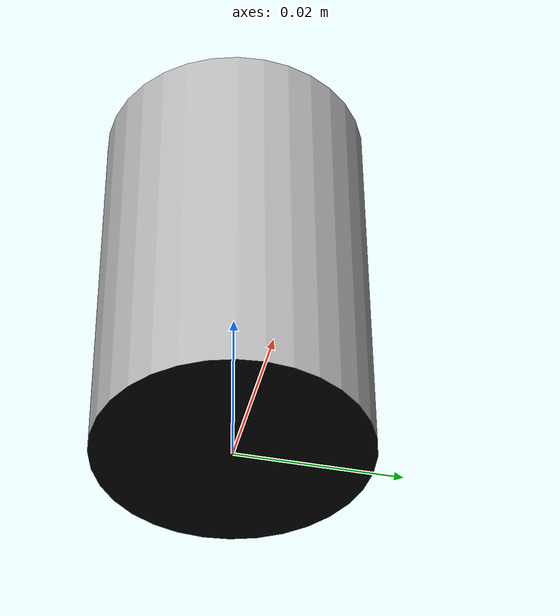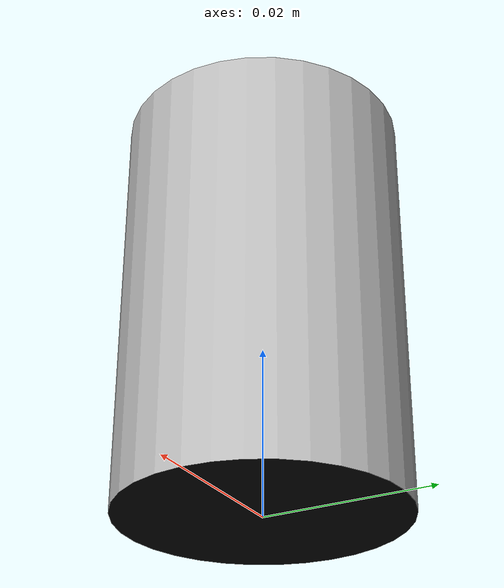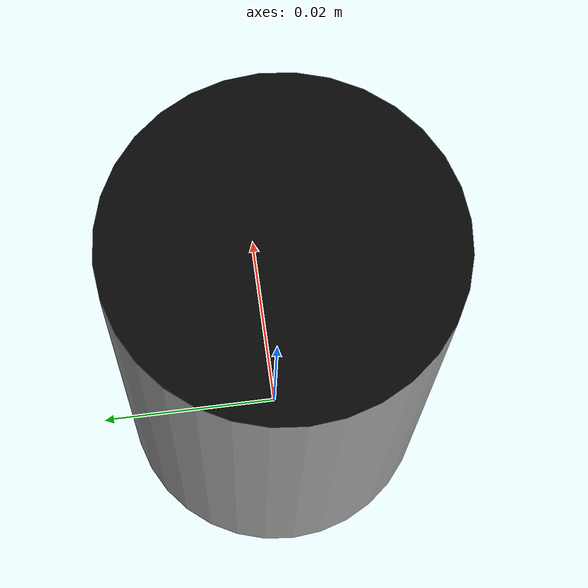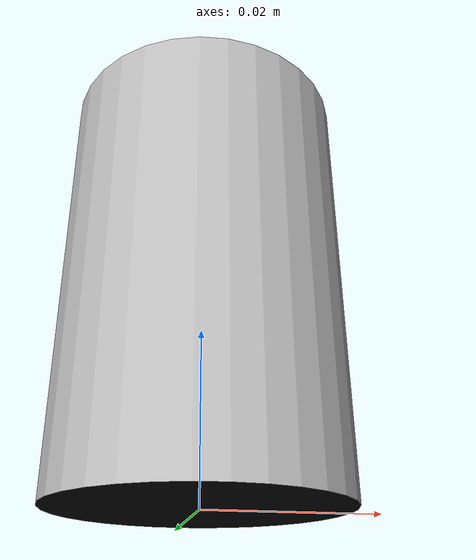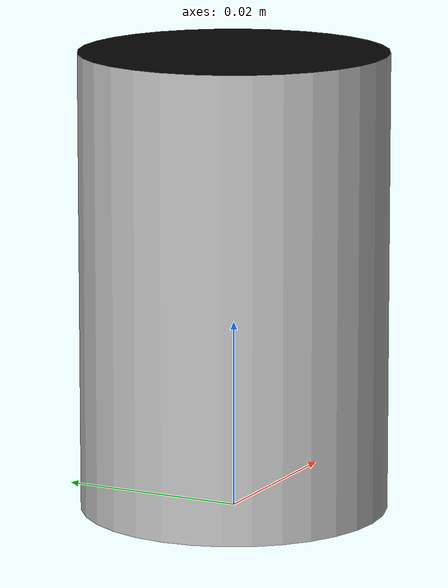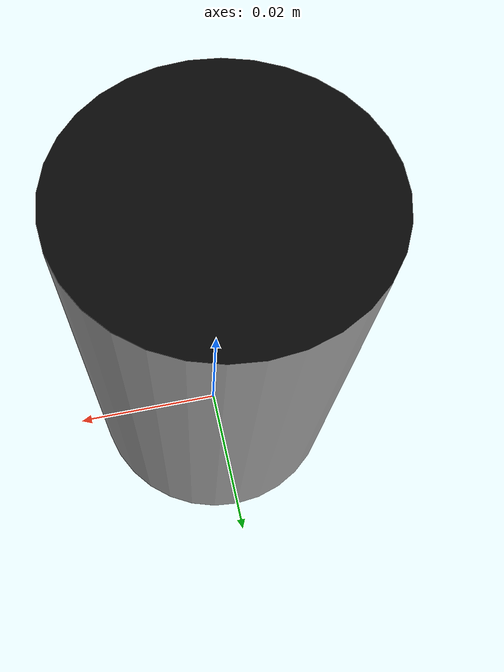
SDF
<?xml version="1.0" ?>
<sdf version="1.6">
  <model name="can">
    <static>false</static>
    <link name="link">
      <!-- Propiedades físicas -->
      <inertial>
        <mass>0.1</mass> <!-- Ajusta la masa para que sea realista -->
        <inertia>
          <ixx>0.0001</ixx>
          <iyy>0.0001</iyy>
          <izz>0.0001</izz>
        </inertia>
      </inertial>

      <!-- Visual element -->
      <visual name="visual">
        <geometry>
          <mesh>
            <uri>model://can/meshes/Can.dae</uri>
            <scale>0.45 0.45 0.45</scale>
          </mesh>
        </geometry>
      </visual>

      <!-- Collision element -->
      <collision name="collision">
        <geometry>
          <box>
            <size>0.05 0.05 0.001</size> <!-- Ajusta las dimensiones del box -->
          </box>
        </geometry>
        <!-- Propiedades de fricción -->
        <surface>
          <friction>
            <ode>
              <mu>1.0</mu> <!-- Coeficiente de fricción estática -->
              <mu2>1.0</mu2> <!-- Coeficiente de fricción dinámica -->
            </ode>
          </friction>
          <contact>
            <ode>
              <kp>100000</kp> <!-- Ganancia proporcional para contactos -->
              <kd>100</kd> <!-- Ganancia derivativa para contactos -->
            </ode>
          </contact>
        </surface>
      </collision>
    </link>
  </model>
</sdf>
